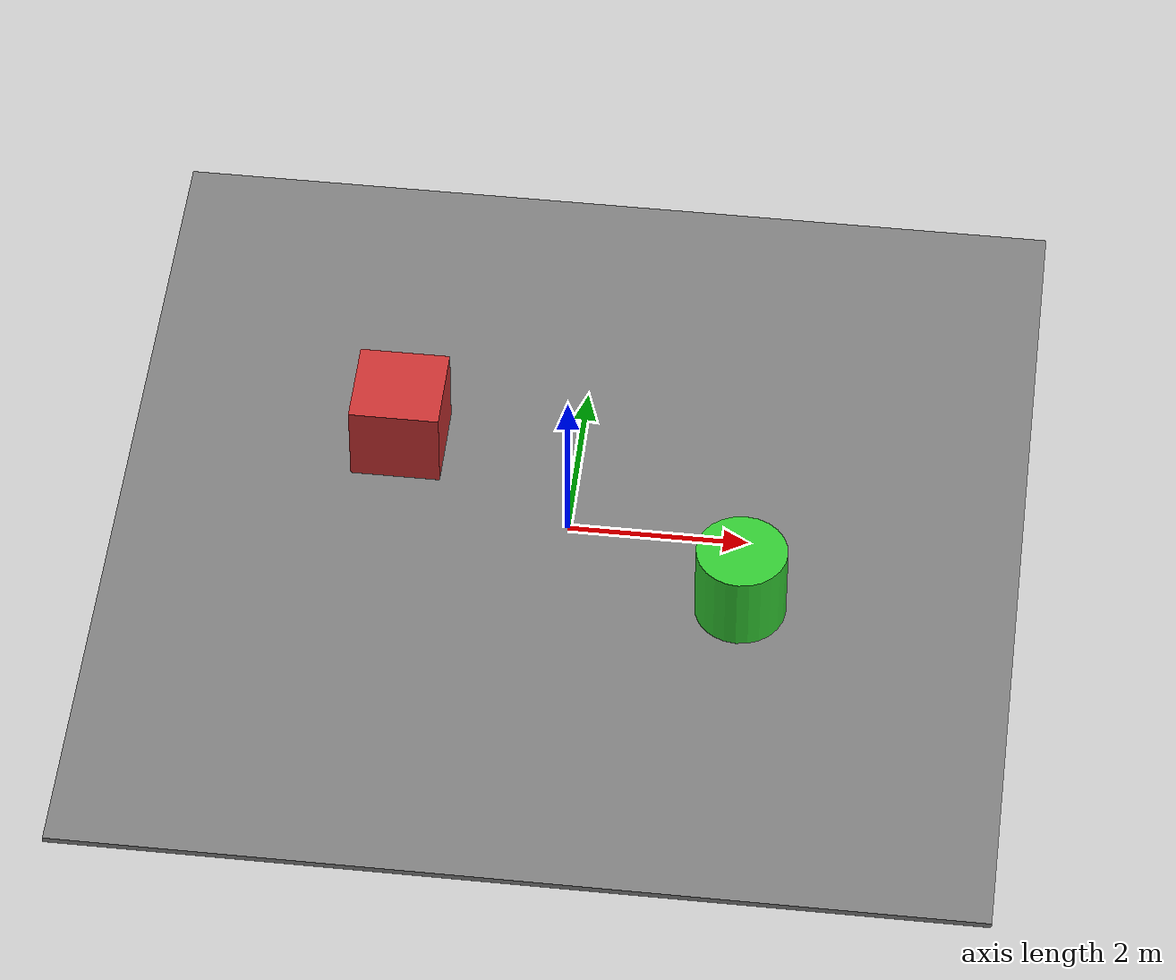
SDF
<?xml version="1.0" ?>
<sdf version="1.7">
  <world name="humanoid_perception_world">
    <!-- Physics Engine Configuration -->
    <physics type="ode">
      <max_step_size>0.001</max_step_size>
      <real_time_factor>1.0</real_time_factor>
      <real_time_update_rate>1000.0</real_time_update_rate>
      <gravity>0 0 -9.8</gravity>

      <!-- ODE Specific Parameters -->
      <ode>
        <solver>
          <type>quick</type>
          <iters>10</iters>
          <sor>1.3</sor>
        </solver>
        <constraints>
          <cfm>0.0</cfm>
          <erp>0.2</erp>
          <contact_max_correcting_vel>100.0</contact_max_correcting_vel>
          <contact_surface_layer>0.001</contact_surface_layer>
        </constraints>
      </ode>
    </physics>

    <!-- GUI Configuration -->
    <gui fullscreen="0">
      <camera name="user_camera">
        <pose>5.0 -5.0 2.0 0.0 0.3 1.1</pose>
        <view_controller>orbit</view_controller>
      </camera>
    </gui>

    <!-- Scene Configuration -->
    <scene>
      <ambient>0.4 0.4 0.4 1</ambient>
      <background>0.7 0.7 0.7 1</background>
      <shadows>true</shadows>
    </scene>

    <!-- Ground Plane -->
    <include>
      <uri>model://ground_plane</uri>
    </include>

    <!-- Lighting -->
    <include>
      <uri>model://sun</uri>
    </include>

    <!-- Humanoid Perception Test Environment -->
    <model name="humanoid_robot">
      <pose>0 0 1.0 0 0 0</pose>
      <link name="base_link">
        <inertial>
          <mass>75.0</mass>
          <inertia>
            <ixx>10.0</ixx>
            <ixy>0.0</ixy>
            <ixz>0.0</ixz>
            <iyy>10.0</iyy>
            <iyz>0.0</iyz>
            <izz>10.0</izz>
          </inertia>
        </inertial>

        <!-- RGB Camera for perception -->
        <sensor name="rgb_camera" type="camera">
          <camera name="head_camera">
            <horizontal_fov>1.047</horizontal_fov>
            <image>
              <width>640</width>
              <height>480</height>
              <format>R8G8B8</format>
            </image>
            <clip>
              <near>0.1</near>
              <far>300.0</far>
            </clip>
          </camera>
          <always_on>1</always_on>
          <update_rate>30</update_rate>
          <visualize>true</visualize>
        </sensor>

        <!-- Depth Camera for 3D perception -->
        <sensor name="depth_camera" type="depth">
          <camera name="head_depth_camera">
            <horizontal_fov>1.047</horizontal_fov>
            <image>
              <width>640</width>
              <height>480</height>
            </image>
            <clip>
              <near>0.1</near>
              <far>10.0</far>
            </clip>
          </camera>
          <always_on>1</always_on>
          <update_rate>30</update_rate>
          <visualize>true</visualize>
        </sensor>

        <!-- IMU for inertial measurements -->
        <sensor name="imu_sensor" type="imu">
          <always_on>1</always_on>
          <update_rate>100</update_rate>
        </sensor>
      </link>
    </model>

    <!-- Perception Test Objects -->
    <model name="test_cube_1">
      <pose>-2 1 0.5 0 0 0</pose>
      <link name="link">
        <visual name="visual">
          <geometry>
            <box>
              <size>1 1 1</size>
            </box>
          </geometry>
          <material>
            <ambient>0.8 0.2 0.2 1</ambient>
            <diffuse>0.8 0.2 0.2 1</diffuse>
          </material>
        </visual>
        <collision name="collision">
          <geometry>
            <box>
              <size>1 1 1</size>
            </box>
          </geometry>
        </collision>
        <inertial>
          <mass>1.0</mass>
          <inertia>
            <ixx>0.1667</ixx>
            <ixy>0.0</ixy>
            <ixz>0.0</ixz>
            <iyy>0.1667</iyy>
            <iyz>0.0</iyz>
            <izz>0.1667</izz>
          </inertia>
        </inertial>
      </link>
    </model>

    <model name="test_cylinder_1">
      <pose>2 -1 0.5 0 0 0</pose>
      <link name="link">
        <visual name="visual">
          <geometry>
            <cylinder>
              <radius>0.5</radius>
              <length>1.0</length>
            </cylinder>
          </geometry>
          <material>
            <ambient>0.2 0.8 0.2 1</ambient>
            <diffuse>0.2 0.8 0.2 1</diffuse>
          </material>
        </visual>
        <collision name="collision">
          <geometry>
            <cylinder>
              <radius>0.5</radius>
              <length>1.0</length>
            </cylinder>
          </geometry>
        </collision>
        <inertial>
          <mass>1.0</mass>
          <inertia>
            <ixx>0.3125</ixx>
            <ixy>0.0</ixy>
            <ixz>0.0</ixz>
            <iyy>0.3125</iyy>
            <iyz>0.0</iyz>
            <izz>0.25</izz>
          </inertia>
        </inertial>
      </link>
    </model>

    <!-- Textured plane for visual perception testing -->
    <model name="textured_plane">
      <pose>0 0 0 0 0 0</pose>
      <link name="link">
        <visual name="visual">
          <geometry>
            <box>
              <size>10 10 0.1</size>
            </box>
          </geometry>
          <material>
            <ambient>0.5 0.5 0.5 1</ambient>
            <diffuse>0.5 0.5 0.5 1</diffuse>
          </material>
        </visual>
        <collision name="collision">
          <geometry>
            <box>
              <size>10 10 0.1</size>
            </box>
          </geometry>
        </collision>
      </link>
    </model>

    <!-- Lighting for photorealistic rendering -->
    <light name="perception_light_1" type="point">
      <pose>0 0 5 0 0 0</pose>
      <diffuse>1 1 1 1</diffuse>
      <specular>1 1 1 1</specular>
      <attenuation>
        <range>10</range>
        <constant>0.5</constant>
        <linear>0.01</linear>
        <quadratic>0.001</quadratic>
      </attenuation>
    </light>

    <light name="perception_light_2" type="directional">
      <pose>0 0 10 0.5 0.2 0</pose>
      <diffuse>0.8 0.8 0.8 1</diffuse>
      <specular>0.2 0.2 0.2 1</specular>
      <attenuation>
        <range>1000</range>
        <constant>0.9</constant>
        <linear>0.01</linear>
        <quadratic>0.001</quadratic>
      </attenuation>
      <direction>0 0 -1</direction>
    </light>

  </world>
</sdf>
